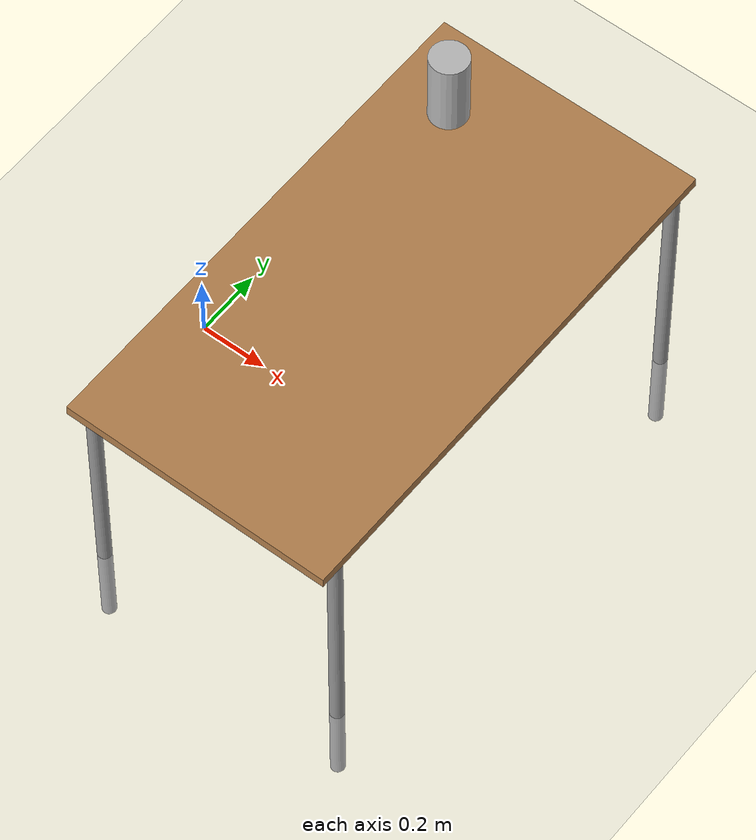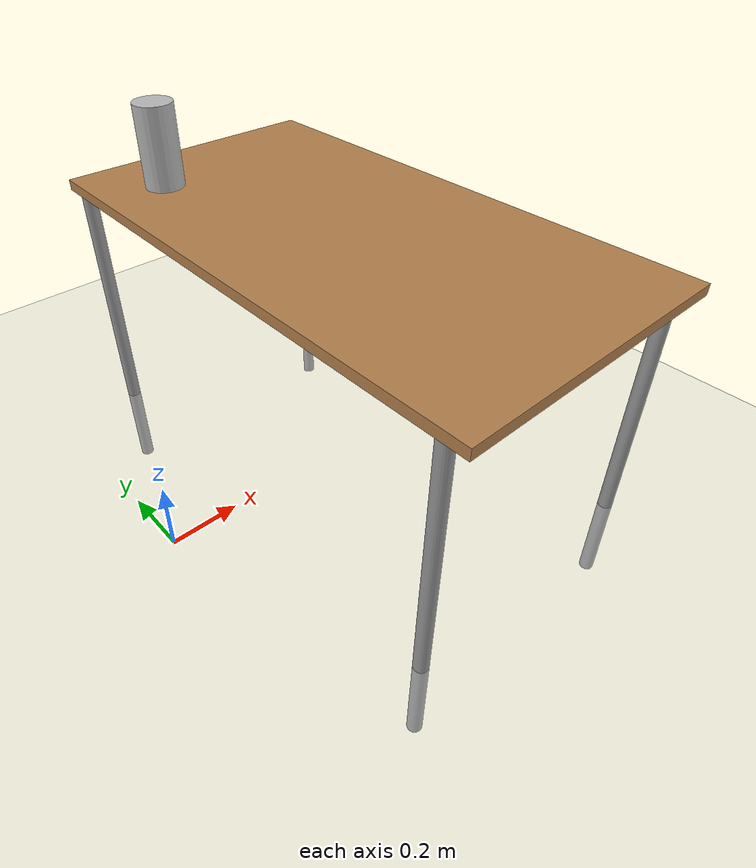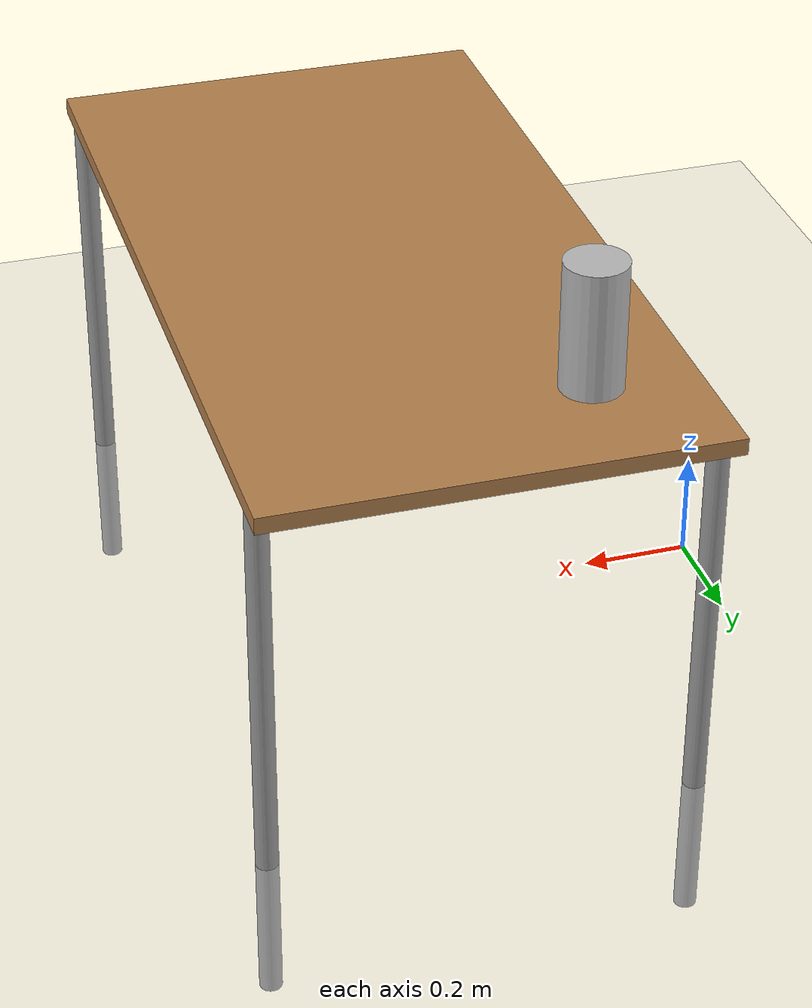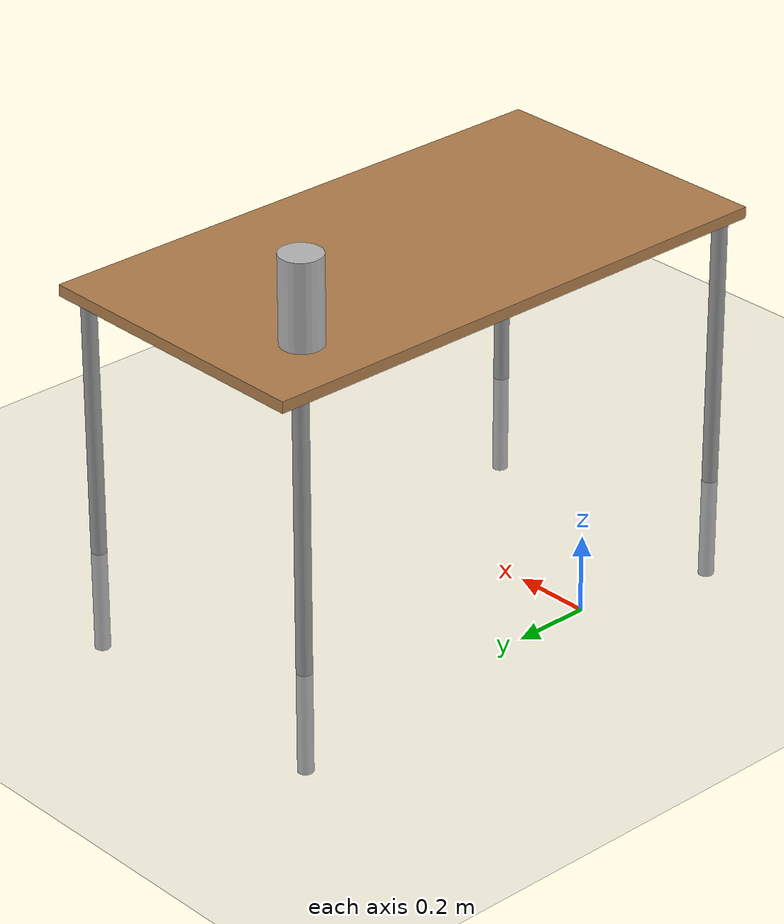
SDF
<sdf version="1.7">
 <world name="reachy_grasping">
  <light name="sun" type="directional">
   <pose>0 0 10 0 -0 0</pose>
   <diffuse>0.8 0.8 0.8 1</diffuse>
   <specular>0.2 0.2 0.2 1</specular>
   <attenuation>
    <range>1000</range>
    <constant>0.9</constant>
    <linear>0.01</linear>
    <quadratic>0.001</quadratic>
   </attenuation>
   <direction>-0.5 0.1 -0.9</direction>
   <spot><inner_angle>0</inner_angle><outer_angle>0</outer_angle><falloff>0</falloff></spot>
  </light>
  <model name="ground_plane">
   <static>1</static>
   <link name="link1">
    <collision name="collision">
     <geometry><plane><normal>0 0 1</normal><size>100 100</size></plane></geometry>
     <surface>
      <contact><collide_bitmask>65535</collide_bitmask></contact>
      <friction><ode><mu>100</mu><mu2>50</mu2></ode></friction>
     </surface>
    </collision>
    <visual name="visual">
     <cast_shadows>0</cast_shadows>
     <geometry><plane><normal>0 0 1</normal><size>100 100</size></plane></geometry>
     <material>
      <script><uri>file://media/materials/scripts/gazebo.material</uri><name>Gazebo/Grey</name></script>
     </material>
    </visual>
   </link>
  </model>
  <gravity>0 0 -9.8</gravity>
  <magnetic_field>6e-06 2.3e-05 -4.2e-05</magnetic_field>
  <atmosphere type="adiabatic"/>
  <physics type="ode">
   <max_step_size>0.001</max_step_size>
   <real_time_factor>1</real_time_factor>
   <real_time_update_rate>1000</real_time_update_rate>
  </physics>
  <scene><ambient>0.4 0.4 0.4 1</ambient><background>0.7 0.7 0.7 1</background><shadows>1</shadows></scene>
  <audio><device>default</device></audio>
  <spherical_coordinates>
   <surface_model>EARTH_WGS84</surface_model>
   <latitude_deg>0</latitude_deg>
   <longitude_deg>0</longitude_deg>
   <elevation>0</elevation>
   <heading_deg>0</heading_deg>
  </spherical_coordinates>
  <model name="table">
   <static>1</static>
   <link name="link_table">
    <collision name="surface">
     <pose>0 0 1 0 -0 0</pose>
     <geometry><box><size>1.5 0.8 0.03</size></box></geometry>
     <surface><friction><ode><mu>0.6</mu><mu2>0.6</mu2></ode></friction></surface>
    </collision>
    <visual name="visual1">
     <pose>0 0 1 0 -0 0</pose>
     <geometry><box><size>1.5 0.8 0.03</size></box></geometry>
     <material>
      <script><uri>file://media/materials/scripts/gazebo.material</uri><name>Gazebo/Wood</name></script>
     </material>
    </visual>
    <collision name="front_left_legc">
     <pose>0.68 0.38 0.5 0 -0 0</pose>
     <geometry><cylinder><radius>0.02</radius><length>1</length></cylinder></geometry>
    </collision>
    <visual name="front_left_leg">
     <pose>0.68 0.38 0.5 0 -0 0</pose>
     <geometry><cylinder><radius>0.02</radius><length>1</length></cylinder></geometry>
     <material>
      <script><uri>file://media/materials/scripts/gazebo.material</uri><name>Gazebo/Grey</name></script>
     </material>
    </visual>
    <collision name="front_right_legc">
     <pose>0.68 -0.38 0.5 0 -0 0</pose>
     <geometry><cylinder><radius>0.02</radius><length>1</length></cylinder></geometry>
    </collision>
    <visual name="front_right_leg">
     <pose>0.68 -0.38 0.5 0 -0 0</pose>
     <geometry><cylinder><radius>0.02</radius><length>1</length></cylinder></geometry>
     <material>
      <script><uri>file://media/materials/scripts/gazebo.material</uri><name>Gazebo/Grey</name></script>
     </material>
    </visual>
    <collision name="back_right_legc">
     <pose>-0.68 -0.38 0.5 0 -0 0</pose>
     <geometry><cylinder><radius>0.02</radius><length>1</length></cylinder></geometry>
    </collision>
    <visual name="back_right_leg">
     <pose>-0.68 -0.38 0.5 0 -0 0</pose>
     <geometry><cylinder><radius>0.02</radius><length>1</length></cylinder></geometry>
     <material>
      <script><uri>file://media/materials/scripts/gazebo.material</uri><name>Gazebo/Grey</name></script>
     </material>
    </visual>
    <collision name="back_left_legc">
     <pose>-0.68 0.38 0.5 0 -0 0</pose>
     <geometry><cylinder><radius>0.02</radius><length>1</length></cylinder></geometry>
    </collision>
    <visual name="back_left_leg">
     <pose>-0.68 0.38 0.5 0 -0 0</pose>
     <geometry><cylinder><radius>0.02</radius><length>1</length></cylinder></geometry>
     <material>
      <script><uri>file://media/materials/scripts/gazebo.material</uri><name>Gazebo/Grey</name></script>
     </material>
    </visual>
   </link>
   <pose>0.618528 -0.015107 -0.274767 0 -0 1.56835</pose>
  </model>
  <model name="beer">
   <link name="link3">
    <pose>0 0 0.115 0 -0 0</pose>
    <inertial>
     <mass>0.39</mass>
     <inertia><ixx>0.00058</ixx><ixy>0</ixy><ixz>0</ixz><iyy>0.00058</iyy><iyz>0</iyz><izz>0.00019</izz></inertia>
    </inertial>
    <collision name="collision">
     <geometry><cylinder><radius>0.055</radius><length>0.23</length></cylinder></geometry>
    </collision>
    <visual name="visual">
     <geometry><cylinder><radius>0.055</radius><length>0.23</length></cylinder></geometry>
     <material>
      <script>
       <uri>model://beer/materials/scripts</uri>
       <uri>model://beer/materials/textures</uri>
       <name>Beer/Diffuse</name>
      </script>
     </material>
    </visual>
   </link>
   <pose>0.404437 0.515655 0.740233 8e-06 2e-06 0.001833</pose>
  </model>
 </world>
</sdf>
